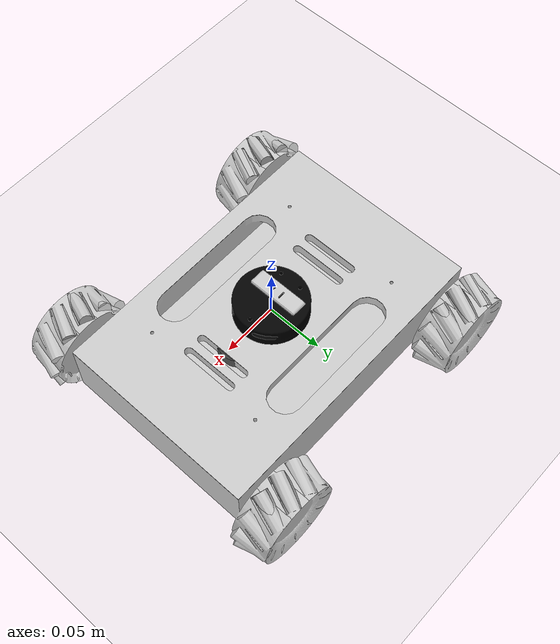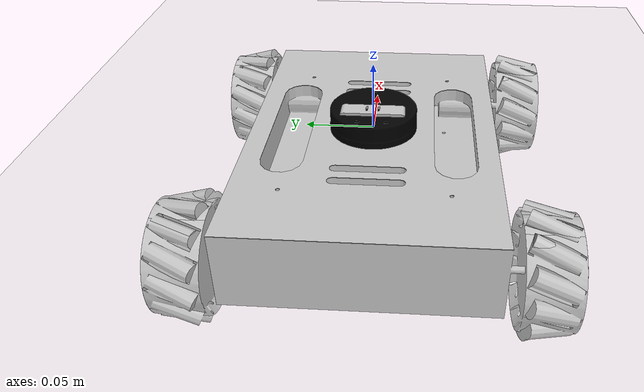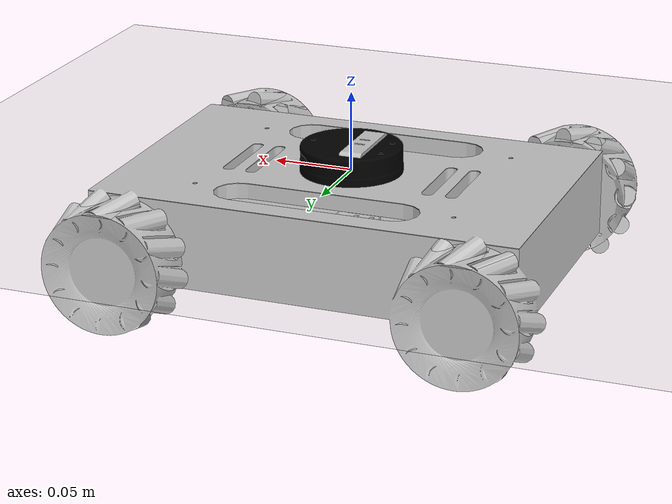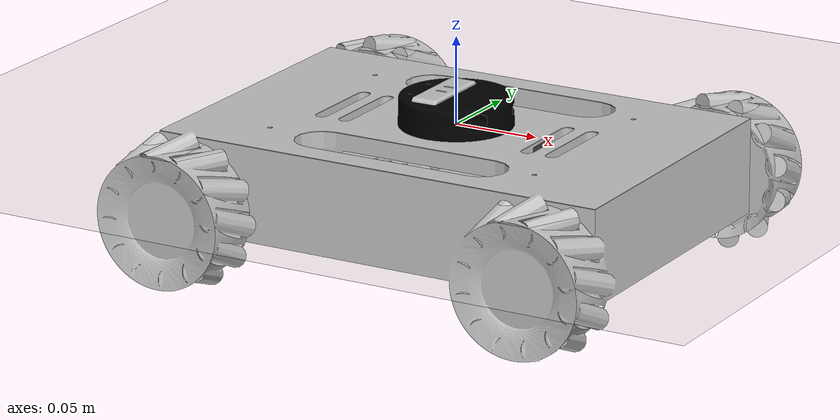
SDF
<?xml version='1.0' encoding='utf-8'?>
<sdf version="1.8"><world name="default"><physics name="default_physics" default="true" type="ode"><max_step_size>0.001</max_step_size><real_time_factor>1.0</real_time_factor><real_time_update_rate>1000</real_time_update_rate></physics><model name="ground_plane"><static>true</static><link name="link"><collision name="collision"><geometry><plane><normal>0 0 1</normal></plane></geometry></collision><visual name="visual"><geometry><plane><normal>0 0 1</normal><size>100 100</size></plane></geometry></visual></link></model><model name="zhongxi_robot"><link name="base_link"><inertial><mass>2.1947</mass><inertia><ixx>0.0036797</ixx><iyy>0.0064143</iyy><izz>0.0083734</izz></inertia></inertial><visual name="visual"><pose>0 0 0 0 0 0</pose><geometry><mesh><uri>file:///home/chuil/Desktop/zhongxi/src/zhongxi_description/meshes/base_link.STL</uri></mesh></geometry><material><ambient>0.75294 0.75294 0.75294 1</ambient><diffuse>0.75294 0.75294 0.75294 1</diffuse></material></visual><collision name="collision"><pose>0 0 0 0 0 0</pose><geometry><mesh><uri>file:///home/chuil/Desktop/zhongxi/src/zhongxi_description/meshes/base_link.STL</uri></mesh></geometry></collision></link><link name="laser_link"><inertial><mass>0.092202</mass><inertia><ixx>2.5005E-05</ixx><iyy>3.5759E-05</iyy><izz>5.6292E-05</izz></inertia></inertial><visual name="visual"><pose>0 0 0 0 0 0</pose><geometry><mesh><uri>file:///home/chuil/Desktop/zhongxi/src/zhongxi_description/meshes/laser_link.STL</uri></mesh></geometry><material><ambient>0 0 0 1</ambient><diffuse>0 0 0 1</diffuse></material></visual><collision name="collision"><pose>0 0 0 0 0 0</pose><geometry><mesh><uri>file:///home/chuil/Desktop/zhongxi/src/zhongxi_description/meshes/laser_link.STL</uri></mesh></geometry></collision></link><link name="camera_link"><inertial><mass>0.030127</mass><inertia><ixx>7.8571E-06</ixx><iyy>3.6895E-06</iyy><izz>5.329E-06</izz></inertia></inertial><visual name="visual"><pose>0 0 0 0 0 0</pose><geometry><mesh><uri>file:///home/chuil/Desktop/zhongxi/src/zhongxi_description/meshes/camera_link.STL</uri></mesh></geometry><material><ambient>0.75294 0.75294 0.75294 1</ambient><diffuse>0.75294 0.75294 0.75294 1</diffuse></material></visual><collision name="collision"><pose>0 0 0 0 0 0</pose><geometry><mesh><uri>file:///home/chuil/Desktop/zhongxi/src/zhongxi_description/meshes/camera_link.STL</uri></mesh></geometry></collision></link><joint name="laser_joint" type="fixed"><parent>base_link</parent><child>laser_link</child><pose>0.0549999999999995 0 0.117 0 0 0</pose></joint><joint name="camera_joint" type="fixed"><parent>base_link</parent><child>camera_link</child><pose>0.1655 0 0.074 0 0 0</pose></joint></model><plugin name="laser_sensor" filename="libignition-gazebo-sensors-system.so"><topic>/world/default/model/zhongxi_robot/link/laser_link/sensor/laser_sensor/scan</topic></plugin><plugin name="camera_sensor" filename="libignition-gazebo-sensors-system.so"><topic>/world/default/model/zhongxi_robot/link/camera_link/sensor/camera_sensor/image</topic></plugin></world></sdf>
